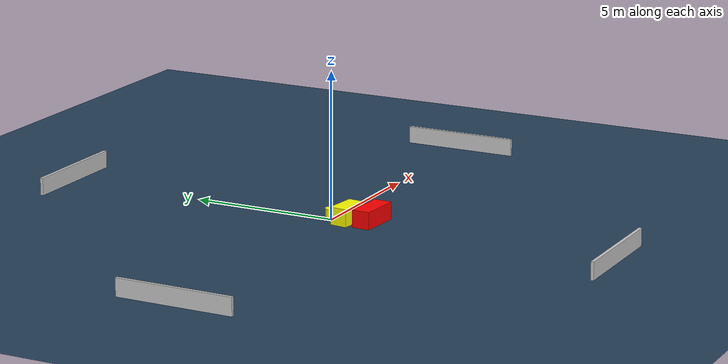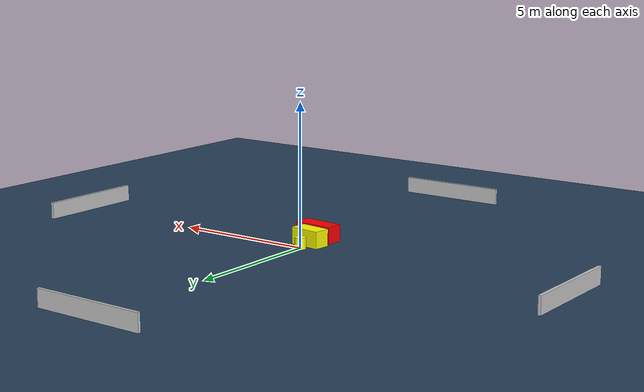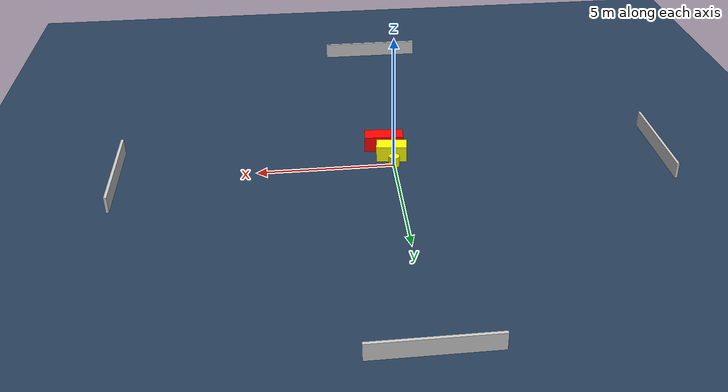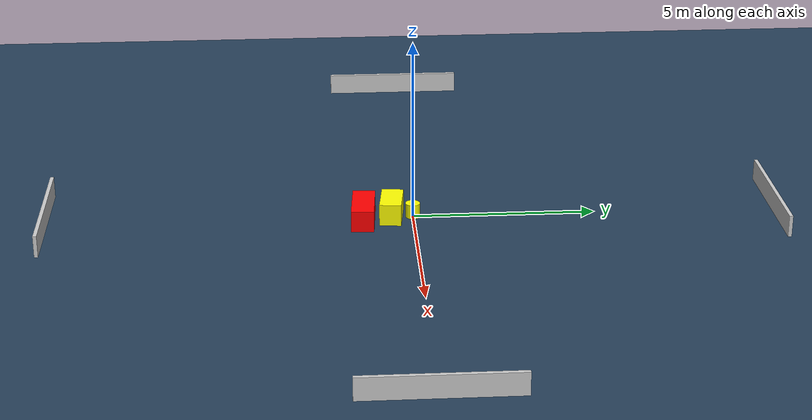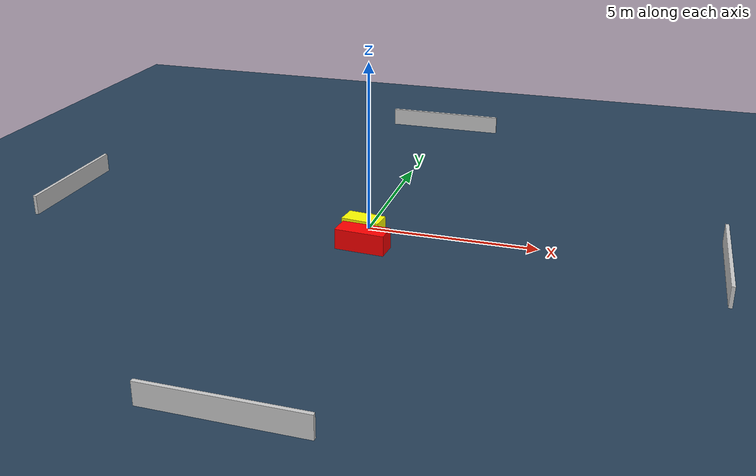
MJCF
<?xml version="1.0" ?>
<mujoco model="generated_environment">
  <option timestep="0.01" integrator="RK4" cone="elliptic"/>
  <default>
    <geom density="1"/>
  </default>
  <asset>
    <texture builtin="gradient" height="3072" name="skybox" rgb1="0.3 0.5 0.7" rgb2="0 0 0" type="skybox" width="512"/>
    <texture builtin="checker" height="300" name="groundplane" rgb1="0.2 0.3 0.4" rgb2="0.1 0.2 0.3" type="2d" width="300"/>
    <material name="groundplane" reflectance="0.2" texrepeat="5 5" texture="groundplane"/>
  </asset>
  <worldbody>
    <light dir="0 0 -1" directional="true" pos="0 0 1.5"/>
    <geom condim="3" friction="0.5 0.005 0.001" material="groundplane" name="floor" pos="0 0 0" size="0 0 0.05" type="plane"/>
    <body name="walls">
      <geom name="wall_1" condim="4" pos="-10.0 0.0 0.3" rgba="0.800000011920929 0.800000011920929 0.800000011920929 1.0" size="0.05 2.0 0.3" type="box"/>
      <geom name="wall_2" condim="4" pos="10.0 0.0 0.3" rgba="0.800000011920929 0.800000011920929 0.800000011920929 1.0" size="0.05 2.0 0.3" type="box"/>
      <geom name="wall_3" condim="4" pos="0.0 -10.0 0.3" rgba="0.800000011920929 0.800000011920929 0.800000011920929 1.0" size="2.0 0.05 0.3" type="box"/>
      <geom name="wall_4" condim="4" pos="0.0 10.0 0.3" rgba="0.800000011920929 0.800000011920929 0.800000011920929 1.0" size="2.0 0.05 0.3" type="box"/>
    </body>
    <body name="robot">
      <joint name="joint_x" type="slide" pos="0 0 0" axis="1 0 0"/>
      <joint name="joint_y" type="slide" pos="0 0 0" axis="0 1 0"/>
      <geom name="robot" type="cylinder" pos="0.0 0.0 0.2" size="0.2 0.2 0.0" mass="5.0" friction="1.0 0.005 0.0001" condim="4" rgba="1.0 1.0 0.0 1.0"/>
    </body>
    <body name="obstacle_1_movable">
      <geom name="obstacle_1_movable" condim="4" pos="0.030583706343487782 -0.5836114917134129 0.3" euler="0 0 263.5019051175901" friction="0.0 0.005 0.001" rgba="1.0 1.0 0.0 1.0" size="0.2976066114367869 0.5603074308689382 0.3" type="box" mass="0.1"/>
      <joint type="free"/>
    </body>
    <body name="obstacle_2_static">
      <geom name="obstacle_2_static" condim="4" pos="0.24662773936228463 -1.3636504584960674 0.3" euler="0 0 86.05380171410906" friction="0.0 0.005 0.001" rgba="1.0 0.0 0.0 1.0" size="0.3100476030428172 0.723434591666583 0.3" type="box"/>
    </body>
  </worldbody>
  <actuator>
    <motor name="actuator_x" joint="joint_x" gear="1" ctrlrange="-1 1"/>
    <motor name="actuator_y" joint="joint_y" gear="1" ctrlrange="-1 1"/>
  </actuator>
</mujoco>
